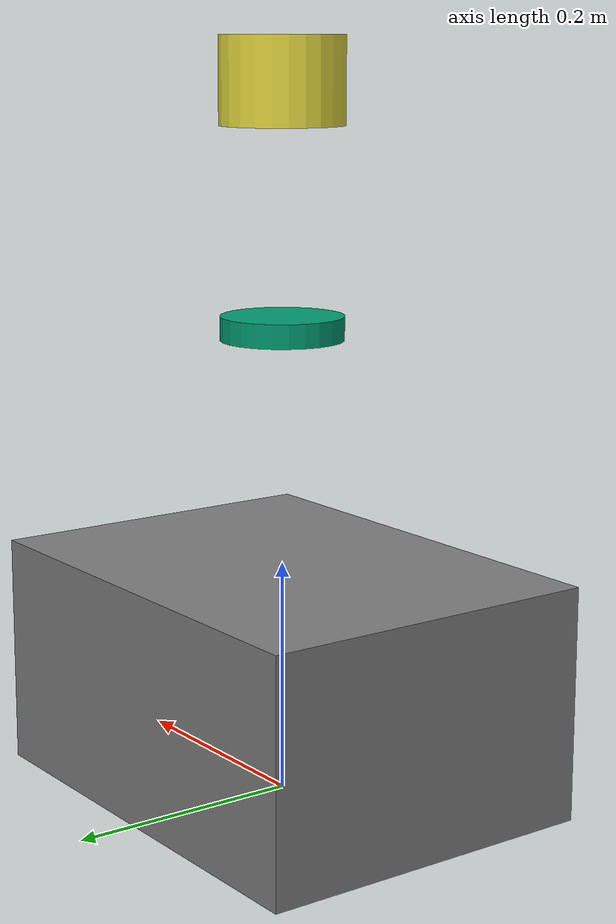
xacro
<?xml version="1.0"?>
<robot
  xmlns:xacro="http://ros.org/wiki/xacro"
  xmlns:controller="http://playerstage.sourceforge.net/gazebo/xmlschema/#controller"
  xmlns:interface="http://playerstage.sourceforge.net/gazebo/xmlschema/#interface"
  xmlns:sensor="http://playerstage.sourceforge.net/gazebo/xmlschema/#sensor"
  name="robot_sensor">

<xacro:property name="M_PI" value="3.14159265359"/>

<link name="base_footprint">
</link>

<link name="base_link">
  <visual>
    <origin xyz="0 0 0" rpy="0 0 0" />
    <geometry>
      <box size="0.4 0.3 0.2"/>
    </geometry>
    <material name="silver" >
      <color rgba="0.5 0.5 0.5 1" />
    </material>
  </visual>
  <collision>
    <origin xyz="0 0 0" rpy="0 0 0" />
    <geometry>
      <box size="0.4 0.3 0.2"/>
    </geometry>
  </collision>
  <inertial>
      <mass value="10.0" />
      <origin xyz="0 0 0" />
      <inertia ixx="${0.0833333 * 10.0 * (0.3*0.3 + 0.2*0.2)}" ixy="0.0" ixz="0.0"
        iyy="${0.0833333 * 10.0 * (0.4*0.4 + 0.2*0.2)}" iyz="0.0"
        izz="${0.0833333 * 10.0 * (0.4*0.4 + 0.3*0.3)}" />
    </inertial>
</link>

<joint name="base_to_bf_joint" type="fixed">
  <parent link="base_footprint" />
  <child link="base_link" />
  <origin xyz="0 0 0.1" />
</joint>

<!-- 2D LASER EXAMPLE -->
<link name="laser2d">
  <collision>
    <origin rpy="0 0 0" xyz="0 0 0.0"/>
    <geometry>
      <cylinder radius="0.0516" length="0.02"/>
    </geometry>
  </collision>
  <visual>
    <origin rpy="0 0 0" xyz="0 0 0.0"/>
    <geometry>
      <cylinder radius="0.0516" length="0.02"/>
    </geometry>
  </visual>
  <inertial>
    <mass value="0.2"/>
    <origin xyz="0.0 0.0 0.0"/>
    <inertia ixx="${(0.2 * (3.0*0.0516*0.0516 + 0.0717*0.0717)) / 12.0}" ixy="0" ixz="0"
      iyy="${(0.2 * (3.0*0.0516*0.0516 + 0.0717*0.0717)) / 12.0}" iyz="0"
      izz="${0.5 * 0.2 * (0.0516*0.0516)}"/>
  </inertial>
</link>

<joint name="laser2d_to_base_joint" type="fixed">
  <parent link="base_link" />
  <child link="laser2d" />
  <origin xyz="0.0 0.0 0.3" />
</joint>

<gazebo reference="laser2d">
  <rmagine_ignore/>
    <sensor type="rmagine_optix_spherical" name="laser2d">
      <pose>0 0 0 0 0 0</pose>
      <always_on>true</always_on>
      <update_rate>20</update_rate>

      <ray>
        <scan>
          <horizontal>
            <min_angle>${-M_PI}</min_angle>
            <increment>${1.0 * M_PI / 180.0}</increment>
            <samples>360</samples>
          </horizontal>
        </scan>

        <range>
          <min>0.0</min>
          <max>15.0</max>
        </range>

        <noise>
          <type>gaussian</type>
          <mean>0.0</mean>
          <stddev>0.002</stddev>
        </noise>
      </ray>

      <plugin name="rmagine_ros_laser2d" filename="librmagine_optix_ros_gzplugin.so">
          <frame>laser2d</frame>
          <outputs>
            <output name="scan">
              <msg>sensor_msgs/LaserScan</msg>
              <topic>laser2d/scan</topic>
            </output>
          </outputs>
      </plugin>
    </sensor>
</gazebo>

<!-- 3D LASER EXAMPLE -->
<link name="laser3d">
  <collision>
    <origin rpy="0 0 0" xyz="0 0 0.0"/>
    <geometry>
      <cylinder radius="0.0516" length="0.0717"/>
    </geometry>
  </collision>
  <visual>
    <origin rpy="0 0 0" xyz="0 0 0.0"/>
    <geometry>
      <cylinder radius="0.0516" length="0.0717"/>
    </geometry>
  </visual>
  <inertial>
    <mass value="0.83"/>
    <origin xyz="0.0 0.0 0.0"/>
    <inertia ixx="${(0.83 * (3.0*0.0516*0.0516 + 0.0717*0.0717)) / 12.0}" ixy="0" ixz="0"
      iyy="${(0.83 * (3.0*0.0516*0.0516 + 0.0717*0.0717)) / 12.0}" iyz="0"
      izz="${0.5 * 0.83 * (0.0516*0.0516)}"/>
  </inertial>
</link>

<joint name="laser3d_to_base_joint" type="fixed">
  <parent link="base_link" />
  <child link="laser3d" />
  <origin xyz="0.0 0.0 0.5" />
</joint>

<gazebo reference="laser3d">
  <rmagine_ignore/>
    <sensor type="rmagine_optix_spherical" name="laser3d">
      <pose>0 0 0 0 0 0</pose>
      <always_on>true</always_on>
      <update_rate>20</update_rate>

      <ray>
        <scan>
          <horizontal>
            <min_angle>${-M_PI}</min_angle>
            <increment>${360.0 / 1024.0 * M_PI / 180.0}</increment>
            <samples>1024</samples>
          </horizontal>
          <vertical>
            <min_angle>${-45.0 * M_PI / 180.0}</min_angle>
            <increment>${2.0 * M_PI / 180.0}</increment>
            <samples>45</samples>
          </vertical>
        </scan>

        <range>
          <min>0.0</min>
          <max>100.0</max>
        </range>

        <compute>
          <object_ids>true</object_ids>
          <geom_ids>true</geom_ids>
          <face_ids>true</face_ids>
        </compute>

        <noise>
          <type>uniform_dust</type>
          <hit_prob>0.0000001</hit_prob>
          <return_prob>0.5</return_prob>
        </noise>

        <noise>
          <type>rel_gaussian</type>
          <mean>0.0</mean>
          <stddev>0.002</stddev>
          <range_exp>1.0</range_exp>
        </noise>
      </ray>

      <plugin name="rmagine_ros_laser3d" filename="librmagine_optix_ros_gzplugin.so">
          <frame>laser3d</frame>
          <outputs>
            <output name="pcl">
              <msg>sensor_msgs/PointCloud</msg>
              <topic>laser3d/pcl</topic>
            </output>

            <output name="pcl2">
              <msg>sensor_msgs/PointCloud2</msg>
              <topic>laser3d/pcl2</topic>
            </output>
          </outputs>
      </plugin>
    </sensor>
</gazebo>

</robot>
